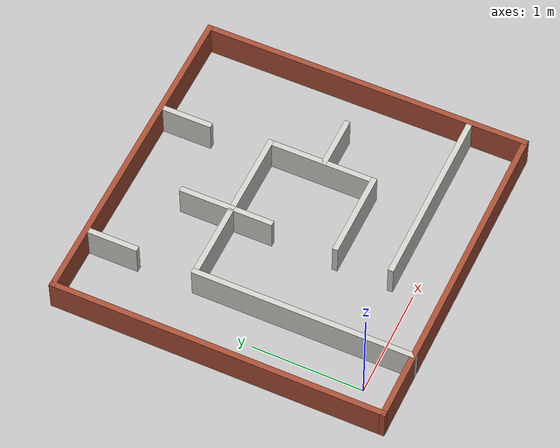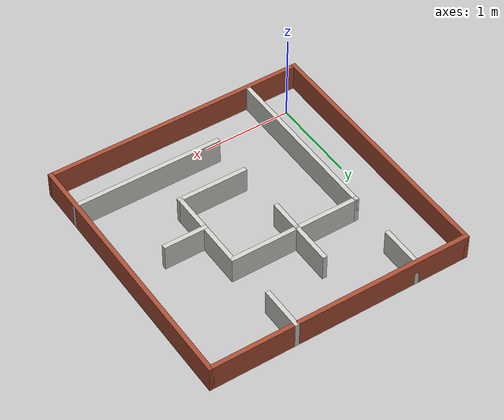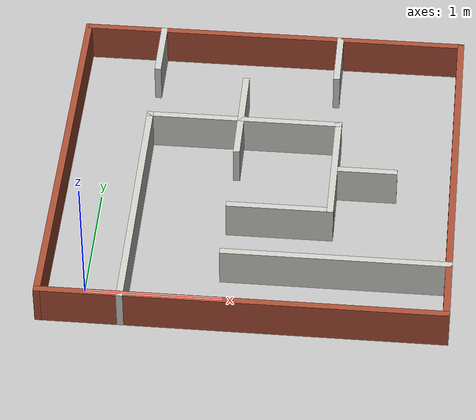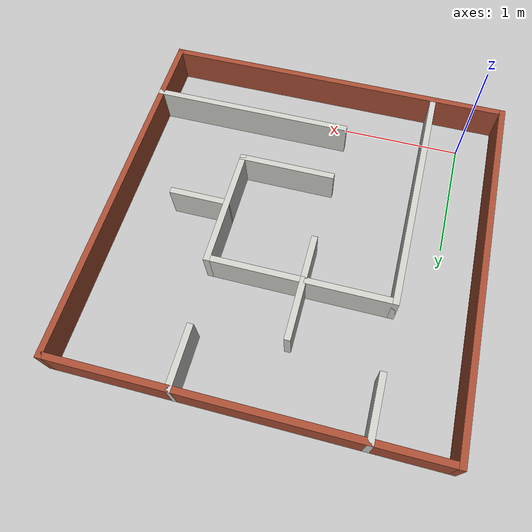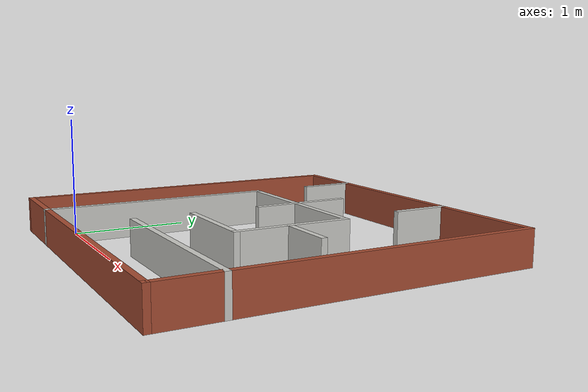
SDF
<?xml version='1.0'?>
<sdf version='1.6'>
  <model name='qmp'>
    <pose frame=''>1.175 1.175 0 0 -0 0</pose>
    <link name='Wall_11'>
      <collision name='Wall_11_Collision'>
        <geometry>
          <box>
            <size>2 0.05 0.3</size>
          </box>
        </geometry>
        <pose frame=''>0 0 0.15 0 -0 0</pose>
      </collision>
      <visual name='Wall_11_Visual'>
        <pose frame=''>0 0 0.15 0 -0 0</pose>
        <geometry>
          <box>
            <size>2 0.05 0.3</size>
          </box>
        </geometry>
        <material>
          <script>
            <uri>file://media/materials/scripts/gazebo.material</uri>
            <name>Gazebo/CeilingTiled</name>
          </script>
          <ambient>1 1 1 1</ambient>
        </material>
        <meta>
          <layer>0</layer>
        </meta>
      </visual>
      <pose frame=''>-0.875 -0.5 0 0 -0 1.5708</pose>
    </link>
    <link name='Wall_14'>
      <collision name='Wall_14_Collision'>
        <geometry>
          <box>
            <size>1.5 0.05 0.3</size>
          </box>
        </geometry>
        <pose frame=''>0 0 0.15 0 -0 0</pose>
      </collision>
      <visual name='Wall_14_Visual'>
        <pose frame=''>0 0 0.15 0 -0 0</pose>
        <geometry>
          <box>
            <size>1.5 0.05 0.3</size>
          </box>
        </geometry>
        <material>
          <script>
            <uri>file://media/materials/scripts/gazebo.material</uri>
            <name>Gazebo/CeilingTiled</name>
          </script>
          <ambient>1 1 1 1</ambient>
        </material>
        <meta>
          <layer>0</layer>
        </meta>
      </visual>
      <pose frame=''>-0.15 0.475 0 0 -0 0</pose>
    </link>
    <link name='Wall_16'>
      <collision name='Wall_16_Collision'>
        <geometry>
          <box>
            <size>0.5 0.05 0.3</size>
          </box>
        </geometry>
        <pose frame=''>0 0 0.15 0 -0 0</pose>
      </collision>
      <visual name='Wall_16_Visual'>
        <pose frame=''>0 0 0.15 0 -0 0</pose>
        <geometry>
          <box>
            <size>0.5 0.05 0.3</size>
          </box>
        </geometry>
        <material>
          <script>
            <uri>file://media/materials/scripts/gazebo.material</uri>
            <name>Gazebo/CeilingTiled</name>
          </script>
          <ambient>1 1 1 1</ambient>
        </material>
        <meta>
          <layer>0</layer>
        </meta>
      </visual>
      <pose frame=''>-0.875 1.25 0 0 -0 -1.5708</pose>
    </link>
    <link name='Wall_18'>
      <collision name='Wall_18_Collision'>
        <geometry>
          <box>
            <size>0.5 0.05 0.3</size>
          </box>
        </geometry>
        <pose frame=''>0 0 0.15 0 -0 0</pose>
      </collision>
      <visual name='Wall_18_Visual'>
        <pose frame=''>0 0 0.15 0 -0 0</pose>
        <geometry>
          <box>
            <size>0.5 0.05 0.3</size>
          </box>
        </geometry>
        <material>
          <script>
            <uri>file://media/materials/scripts/gazebo.material</uri>
            <name>Gazebo/CeilingTiled</name>
          </script>
          <ambient>1 1 1 1</ambient>
        </material>
        <meta>
          <layer>0</layer>
        </meta>
      </visual>
      <pose frame=''>-0.175 0.7 0 0 -0 1.5708</pose>
    </link>
    <link name='Wall_20'>
      <collision name='Wall_20_Collision'>
        <geometry>
          <box>
            <size>0.5 0.05 0.3</size>
          </box>
        </geometry>
        <pose frame=''>0 0 0.15 0 -0 0</pose>
      </collision>
      <visual name='Wall_20_Visual'>
        <pose frame=''>0 0 0.15 0 -0 0</pose>
        <geometry>
          <box>
            <size>0.5 0.05 0.3</size>
          </box>
        </geometry>
        <material>
          <script>
            <uri>file://media/materials/scripts/gazebo.material</uri>
            <name>Gazebo/CeilingTiled</name>
          </script>
          <ambient>1 1 1 1</ambient>
        </material>
        <meta>
          <layer>0</layer>
        </meta>
      </visual>
      <pose frame=''>0.525 1.25 0 0 -0 -1.5708</pose>
    </link>
    <link name='Wall_22'>
      <collision name='Wall_22_Collision'>
        <geometry>
          <box>
            <size>1 0.05 0.3</size>
          </box>
        </geometry>
        <pose frame=''>0 0 0.15 0 -0 0</pose>
      </collision>
      <visual name='Wall_22_Visual'>
        <pose frame=''>0 0 0.15 0 -0 0</pose>
        <geometry>
          <box>
            <size>1 0.05 0.3</size>
          </box>
        </geometry>
        <material>
          <script>
            <uri>file://media/materials/scripts/gazebo.material</uri>
            <name>Gazebo/CeilingTiled</name>
          </script>
          <ambient>1 1 1 1</ambient>
        </material>
        <meta>
          <layer>0</layer>
        </meta>
      </visual>
      <pose frame=''>0.575 0 0 0 -0 -1.5708</pose>
    </link>
    <link name='Wall_24'>
      <collision name='Wall_24_Collision'>
        <geometry>
          <box>
            <size>0.5 0.05 0.3</size>
          </box>
        </geometry>
        <pose frame=''>0 0 0.15 0 -0 0</pose>
      </collision>
      <visual name='Wall_24_Visual'>
        <pose frame=''>0 0 0.15 0 -0 0</pose>
        <geometry>
          <box>
            <size>0.5 0.05 0.3</size>
          </box>
        </geometry>
        <material>
          <script>
            <uri>file://media/materials/scripts/gazebo.material</uri>
            <name>Gazebo/CeilingTiled</name>
          </script>
          <ambient>1 1 1 1</ambient>
        </material>
        <meta>
          <layer>0</layer>
        </meta>
      </visual>
      <pose frame=''>0.8 -0.025 0 0 -0 0</pose>
    </link>
    <link name='Wall_26'>
      <collision name='Wall_26_Collision'>
        <geometry>
          <box>
            <size>0.8 0.05 0.3</size>
          </box>
        </geometry>
        <pose frame=''>0 0 0.15 0 -0 0</pose>
      </collision>
      <visual name='Wall_26_Visual'>
        <pose frame=''>0 0 0.15 0 -0 0</pose>
        <geometry>
          <box>
            <size>0.8 0.05 0.3</size>
          </box>
        </geometry>
        <material>
          <script>
            <uri>file://media/materials/scripts/gazebo.material</uri>
            <name>Gazebo/CeilingTiled</name>
          </script>
          <ambient>1 1 1 1</ambient>
        </material>
        <meta>
          <layer>0</layer>
        </meta>
      </visual>
      <pose frame=''>0.2 -0.475 0 0 -0 3.14159</pose>
    </link>
    <link name='Wall_28'>
      <collision name='Wall_28_Collision'>
        <geometry>
          <box>
            <size>1.7 0.05 0.3</size>
          </box>
        </geometry>
        <pose frame=''>0 0 0.15 0 -0 0</pose>
      </collision>
      <visual name='Wall_28_Visual'>
        <pose frame=''>0 0 0.15 0 -0 0</pose>
        <geometry>
          <box>
            <size>1.7 0.05 0.3</size>
          </box>
        </geometry>
        <material>
          <script>
            <uri>file://media/materials/scripts/gazebo.material</uri>
            <name>Gazebo/CeilingTiled</name>
          </script>
          <ambient>1 1 1 1</ambient>
        </material>
        <meta>
          <layer>0</layer>
        </meta>
      </visual>
      <pose frame=''>0.65 -0.975 0 0 -0 3.14159</pose>
    </link>
    <link name='Wall_3'>
      <collision name='Wall_3_Collision'>
        <geometry>
          <box>
            <size>3 0.05 0.3</size>
          </box>
        </geometry>
        <pose frame=''>0 0 0.15 0 -0 0</pose>
      </collision>
      <visual name='Wall_3_Visual'>
        <pose frame=''>0 0 0.15 0 -0 0</pose>
        <geometry>
          <box>
            <size>3 0.05 0.3</size>
          </box>
        </geometry>
        <material>
          <script>
            <uri>file://media/materials/scripts/gazebo.material</uri>
            <name>Gazebo/Bricks</name>
          </script>
          <ambient>1 1 1 1</ambient>
        </material>
        <meta>
          <layer>0</layer>
        </meta>
      </visual>
      <pose frame=''>-1.475 0 0 0 -0 1.5708</pose>
    </link>
    <link name='Wall_33'>
      <collision name='Wall_33_Collision'>
        <geometry>
          <box>
            <size>0.4 0.05 0.3</size>
          </box>
        </geometry>
        <pose frame=''>0 0 0.15 0 -0 0</pose>
      </collision>
      <visual name='Wall_33_Visual'>
        <pose frame=''>0 0 0.15 0 -0 0</pose>
        <geometry>
          <box>
            <size>0.4 0.05 0.3</size>
          </box>
        </geometry>
        <material>
          <script>
            <uri>file://media/materials/scripts/gazebo.material</uri>
            <name>Gazebo/CeilingTiled</name>
          </script>
          <ambient>1 1 1 1</ambient>
        </material>
        <meta>
          <layer>0</layer>
        </meta>
      </visual>
      <pose frame=''>-0.175 0.3 0 0 -0 -1.5708</pose>
    </link>
    <link name='Wall_5'>
      <collision name='Wall_5_Collision'>
        <geometry>
          <box>
            <size>3 0.05 0.3</size>
          </box>
        </geometry>
        <pose frame=''>0 0 0.15 0 -0 0</pose>
      </collision>
      <visual name='Wall_5_Visual'>
        <pose frame=''>0 0 0.15 0 -0 0</pose>
        <geometry>
          <box>
            <size>3 0.05 0.3</size>
          </box>
        </geometry>
        <material>
          <script>
            <uri>file://media/materials/scripts/gazebo.material</uri>
            <name>Gazebo/Bricks</name>
          </script>
          <ambient>1 1 1 1</ambient>
        </material>
        <meta>
          <layer>0</layer>
        </meta>
      </visual>
      <pose frame=''>-0 1.475 0 0 -0 0</pose>
    </link>
    <link name='Wall_7'>
      <collision name='Wall_7_Collision'>
        <geometry>
          <box>
            <size>3 0.05 0.3</size>
          </box>
        </geometry>
        <pose frame=''>0 0 0.15 0 -0 0</pose>
      </collision>
      <visual name='Wall_7_Visual'>
        <pose frame=''>0 0 0.15 0 -0 0</pose>
        <geometry>
          <box>
            <size>3 0.05 0.3</size>
          </box>
        </geometry>
        <material>
          <script>
            <uri>file://media/materials/scripts/gazebo.material</uri>
            <name>Gazebo/Bricks</name>
          </script>
          <ambient>1 1 1 1</ambient>
        </material>
        <meta>
          <layer>0</layer>
        </meta>
      </visual>
      <pose frame=''>1.475 0 0 0 -0 -1.5708</pose>
    </link>
    <link name='Wall_9'>
      <collision name='Wall_9_Collision'>
        <geometry>
          <box>
            <size>3 0.05 0.3</size>
          </box>
        </geometry>
        <pose frame=''>0 0 0.15 0 -0 0</pose>
      </collision>
      <visual name='Wall_9_Visual'>
        <pose frame=''>0 0 0.15 0 -0 0</pose>
        <geometry>
          <box>
            <size>3 0.05 0.3</size>
          </box>
        </geometry>
        <material>
          <script>
            <uri>file://media/materials/scripts/gazebo.material</uri>
            <name>Gazebo/Bricks</name>
          </script>
          <ambient>1 1 1 1</ambient>
        </material>
        <meta>
          <layer>0</layer>
        </meta>
      </visual>
      <pose frame=''>-0 -1.475 0 0 -0 3.14159</pose>
    </link>
    <static>1</static>
  </model>
</sdf>
